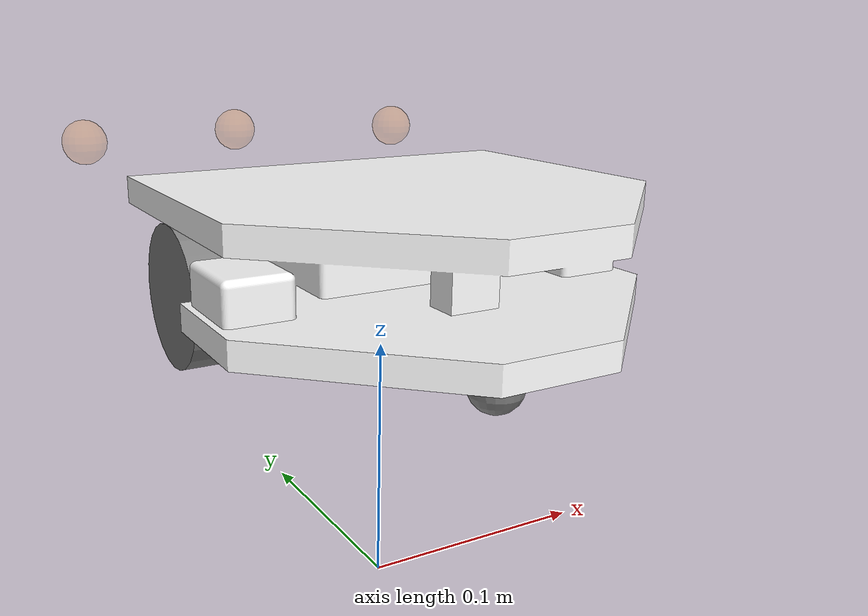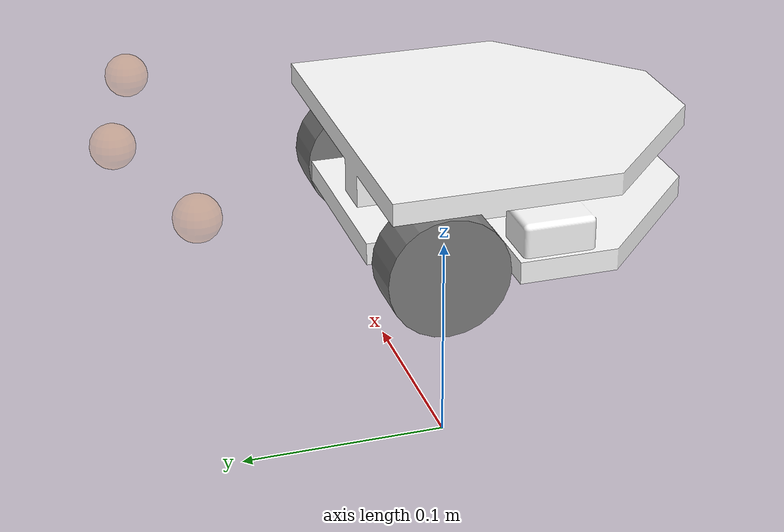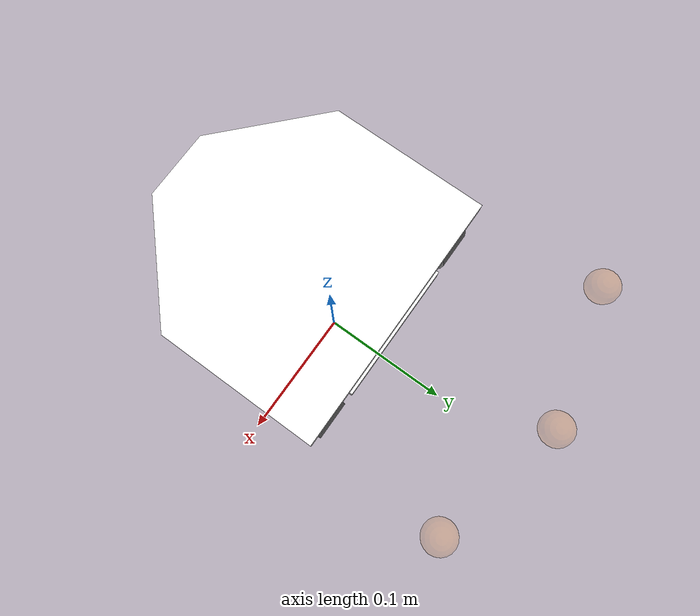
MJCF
<?xml version="1.0" encoding="utf-8"?>
<mujoco model="car">
  <compiler angle="degree" inertiafromgeom="true" autolimits="true" balanceinertia="true"/>

  <option timestep="0.1" gravity="0 0 -9.81" viscosity="0" integrator="RK4" impratio="0.1" tolerance="0.0001" iterations="100" jacobian="dense"/>

  <size njmax="500" nconmax="100"/>

  <asset>
    <mesh name="body" file="SAR_Bod.stl" scale="1 1 1"/>
  </asset>

  <default>
    <joint damping="1.0" armature="0.005"/>
    <geom friction="0.7 0.3 0.01" solimp="0.8 0.99 0.01" solref="0.02 1"/>
  </default>

  <worldbody>
    <body name="car" pos="0 0 0" euler="0 0 0">
      <freejoint/>
      <geom type="mesh" mesh="body" pos="0 0 0.12" rgba="1 1 1 1" mass="2"/>

      <body name="caster_mount" pos="0 -0.075 0.109">
        <geom type="sphere" size="0.001" mass="0.01" rgba="0 0 0 0"/>
        <body name="caster_wheel">
          <joint name="caster_roll" type="ball" damping="0.5" limited="false"/>
          <geom type="sphere" size="0.01" mass="0.25" friction="0.1 0.001 0.001"/>
        </body>
      </body>

      <site name="L0" type="cylinder" pos="0 -0.1 0.17" euler="90 0 0" size="0.005" rgba="1 1 0 0.01"/>
      <site name="L30" type="cylinder" pos="0 -0.1 0.17" euler="90 30 0" size="0.005" rgba="1 1 0 0.01"/>
      <site name="L60" type="cylinder" pos="0 -0.1 0.17" euler="90 60 0" size="0.005" rgba="1 1 0 0.01"/>
      <site name="L90" type="cylinder" pos="0 -0.1 0.17" euler="90 90 0" size="0.005" rgba="1 1 0 0.01"/>
      <site name="L120" type="cylinder" pos="0 -0.1 0.17" euler="90 120 0" size="0.005" rgba="1 1 0 0.01"/>
      <site name="L150" type="cylinder" pos="0 -0.1 0.17" euler="90 150 0" size="0.005" rgba="1 1 0 0.01"/>
      <site name="L180" type="cylinder" pos="0 -0.1 0.17" euler="90 180 0" size="0.005" rgba="1 1 0 0.01"/>
      <site name="L210" type="cylinder" pos="0 -0.1 0.17" euler="90 210 0" size="0.005" rgba="1 1 0 0.01"/>
      <site name="L240" type="cylinder" pos="0 -0.1 0.17" euler="90 240 0" size="0.005" rgba="1 1 0 0.01"/>
      <site name="L270" type="cylinder" pos="0 -0.1 0.17" euler="90 270 0" size="0.005" rgba="1 1 0 0.01"/>
      <site name="L300" type="cylinder" pos="0 -0.1 0.17" euler="90 300 0" size="0.005" rgba="1 1 0 0.01"/>
      <site name="L330" type="cylinder" pos="0 -0.1 0.17" euler="90 330 0" size="0.005" rgba="1 1 0 0.01"/>

      <site name="thermal_center" type="sphere" pos="0 0.15 0.17" size="0.01" rgba="1 0.5 0 0.1"/>
      <site name="thermal_left" type="sphere" pos="-0.08 0.13 0.17" size="0.01" rgba="1 0.5 0 0.1"/>
      <site name="thermal_right" type="sphere" pos="0.08 0.13 0.17" size="0.01" rgba="1 0.5 0 0.1"/>

      <body name="right_wheel" pos="-.064585 .023 .124" euler="0 90 0">
        <joint name="right_wheel_joint" type="hinge" axis="0 0 1" limited="false"/>
        <geom type="cylinder" size="0.0275 0.0122" mass="0.5" friction="0.5 0.01 0.01" solimp="0.9 0.9 0.01"/>
      </body>

      <body name="left_wheel" pos=".064585 .023 .124" euler="0 90 0">
        <joint name="left_wheel_joint" type="hinge" axis="0 0 1" limited="false"/>
        <geom type="cylinder" size="0.0275 0.0122" mass="0.5" friction="0.5 0.01 0.01" solimp="0.9 0.9 0.01"/>
      </body>
    </body>
  </worldbody>

  <actuator>
    <motor name="left_motor" joint="left_wheel_joint"/>
    <motor name="right_motor" joint="right_wheel_joint"/>
  </actuator>

  <sensor>
    <rangefinder name="L0" site="L0"/>
    <rangefinder name="L30" site="L30"/>
    <rangefinder name="L60" site="L60"/>
    <rangefinder name="L90" site="L90"/>
    <rangefinder name="L120" site="L120"/>
    <rangefinder name="L150" site="L150"/>
    <rangefinder name="L180" site="L180"/>
    <rangefinder name="L210" site="L210"/>
    <rangefinder name="L240" site="L240"/>
    <rangefinder name="L270" site="L270"/>
    <rangefinder name="L300" site="L300"/>
    <rangefinder name="L330" site="L330"/>

    <rangefinder name="thermal_center" site="thermal_center"/>
    <rangefinder name="thermal_left" site="thermal_left"/>
    <rangefinder name="thermal_right" site="thermal_right"/>

    <framequat name="car_orientation" objtype="body" objname="car"/>
  </sensor>
</mujoco>
